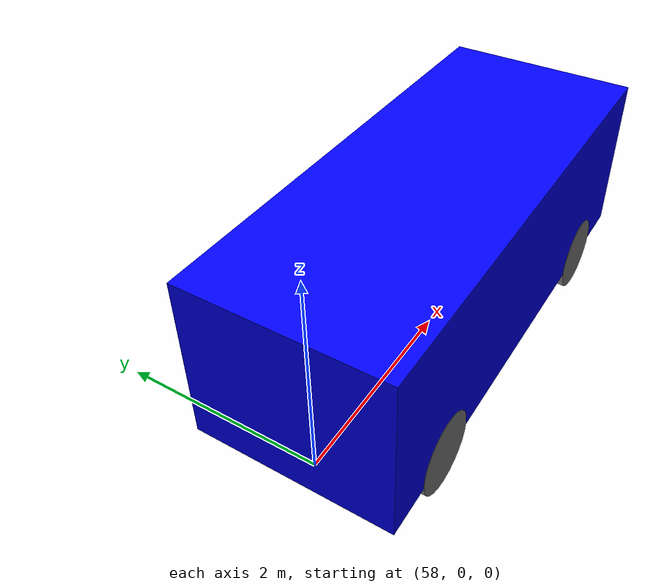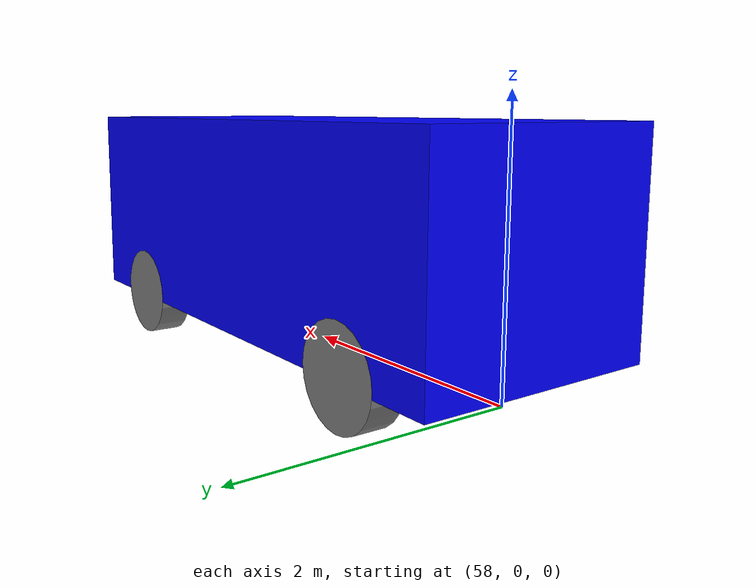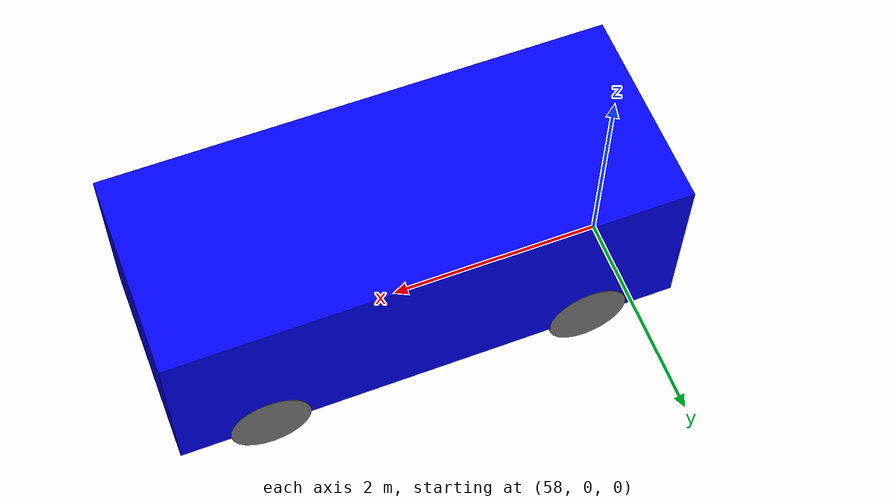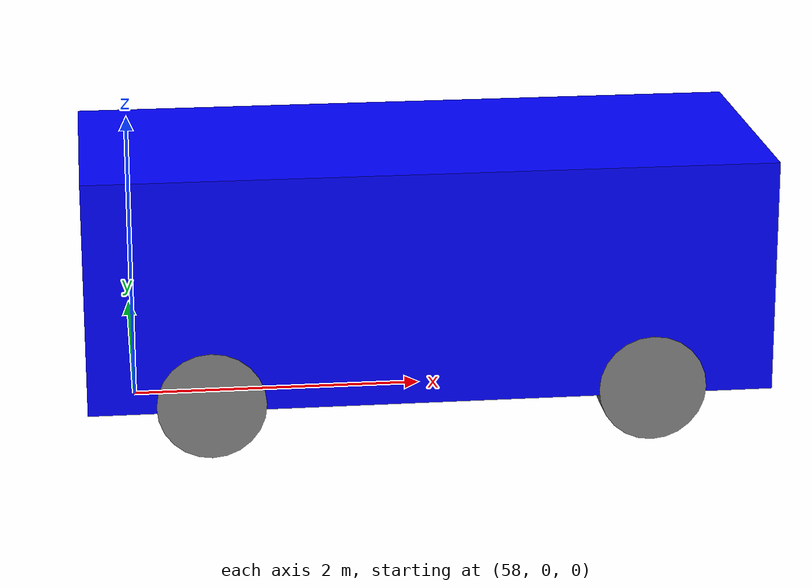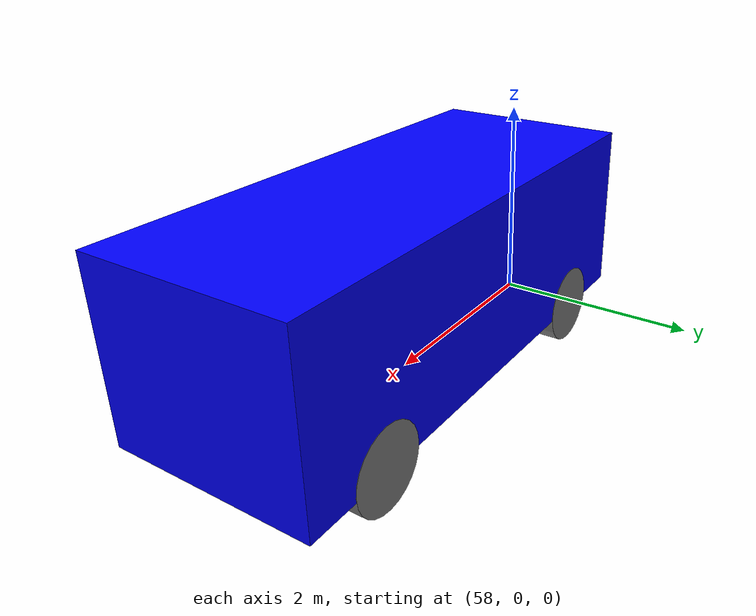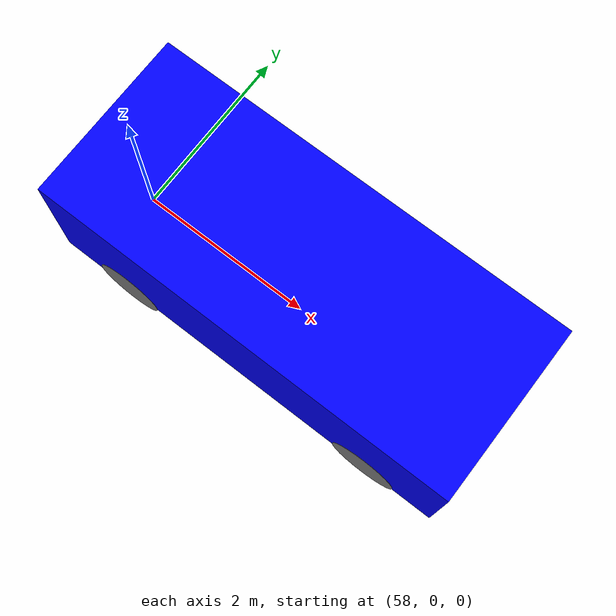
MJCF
<mujoco model="vehicle_static">
  <compiler inertiafromgeom="true"/>
  <option timestep="0.002" gravity="0 0 -9.81"/>

  <asset>
    <texture name="wheel_pattern" type="cube" builtin="checker"
             rgb1="1 1 1" rgb2="0 0 0" width="64" height="64"/>
    <material name="wheel_mat" texture="wheel_pattern"
              texrepeat="10 2" texuniform="true"
              specular="0.4" shininess="0.3" reflectance="0.05"/>
  </asset>

  <worldbody>

    <!-- ================ CASE 1 : STATIC VEHICLE ================= -->

    <body name="static_car" pos="60 0 1.0025">
      <!-- 차체 크기 수정 -->
      <geom type="box" size="2.3275 0.945 0.8025" rgba="0 0 1 1"/>

      <!-- 앞왼쪽 -->
      <geom type="cylinder" size="0.37 0.1275" pos=" 1.50  0.82 -0.765" euler="90 0 0" material="wheel_mat"/>

      <!-- 앞오른쪽 -->
      <geom type="cylinder" size="0.37 0.1275" pos=" 1.50 -0.82 -0.765" euler="90 0 0" material="wheel_mat"/>

      <!-- 뒤왼쪽 -->
      <geom type="cylinder" size="0.37 0.1275" pos="-1.50  0.82 -0.765" euler="90 0 0" material="wheel_mat"/>

      <!-- 뒤오른쪽 -->
      <geom type="cylinder" size="0.37 0.1275" pos="-1.50 -0.82 -0.765" euler="90 0 0" material="wheel_mat"/>

    </body>

  </worldbody>

</mujoco>
